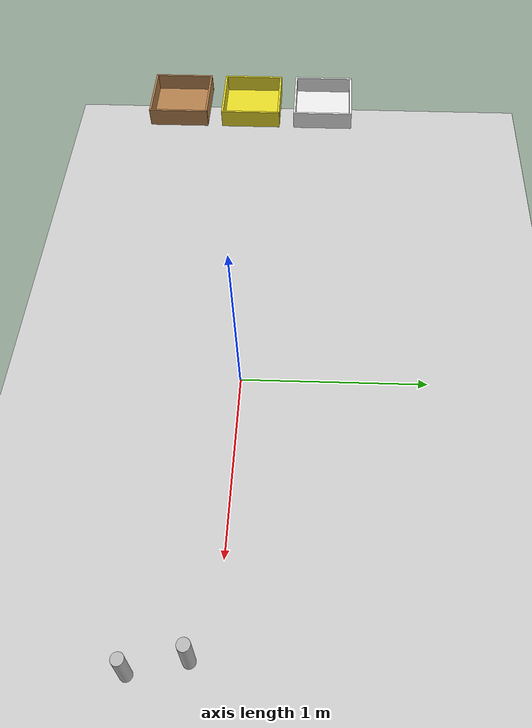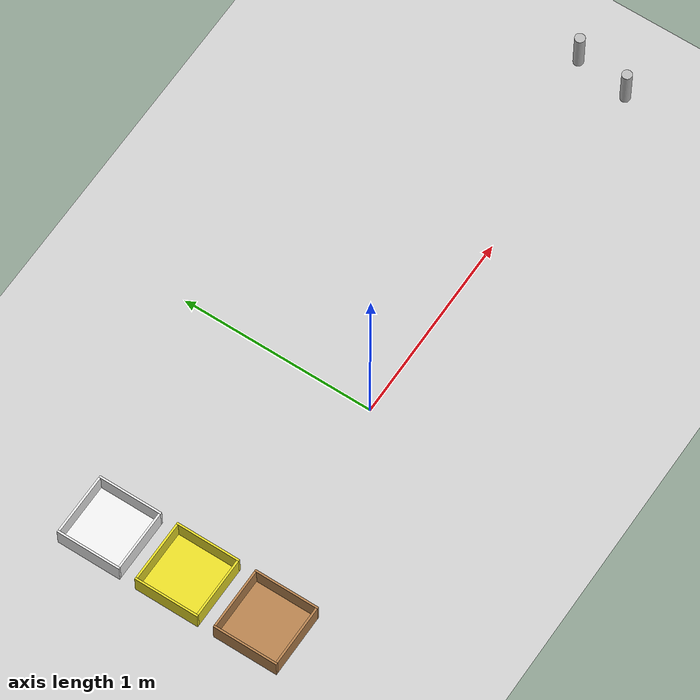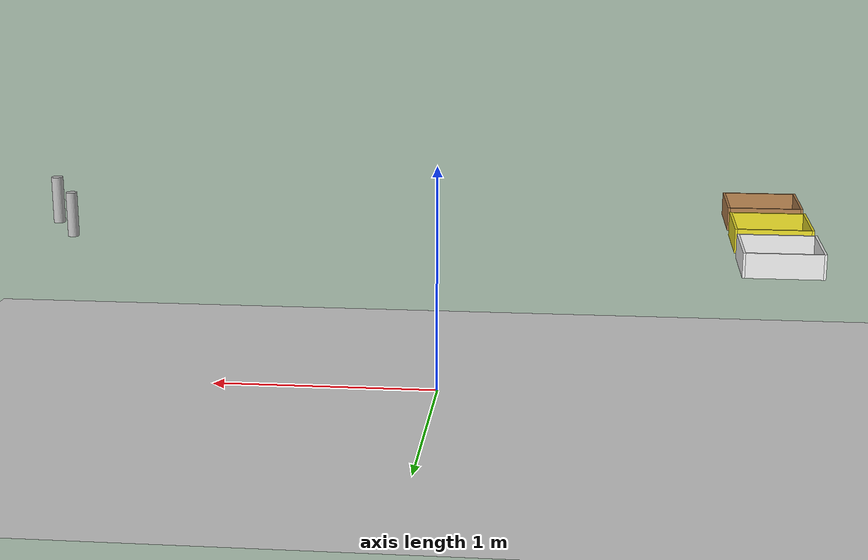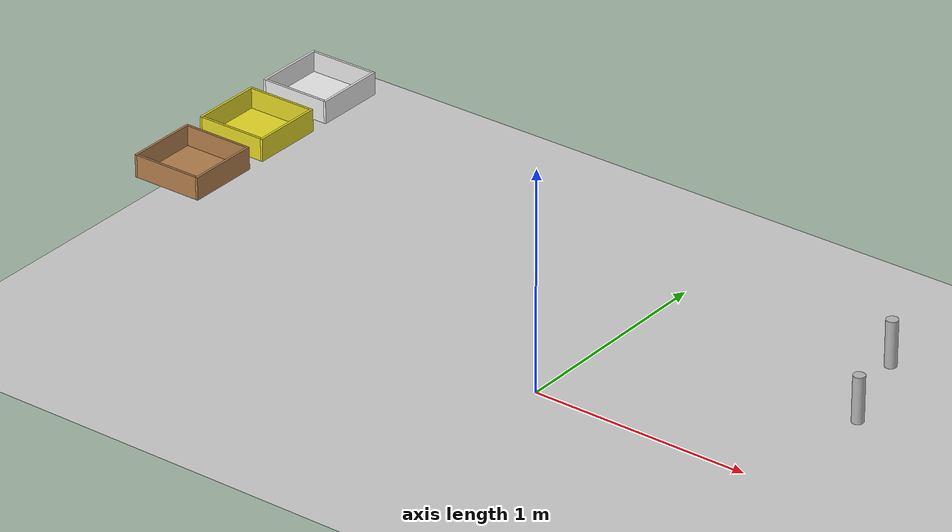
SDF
<sdf version="1.4">
 <world name="default">
  <physics type="ode">
   <gravity>0 0 -9.81</gravity>
   <ode>
    <solver><type>quick</type><iters>20</iters><sor>1.0</sor></solver>
    <constraints>
     <cfm>0.0</cfm>
     <erp>0.2</erp>
     <contact_max_correcting_vel>100.0</contact_max_correcting_vel>
     <contact_surface_layer>0.0</contact_surface_layer>
    </constraints>
   </ode>
   <real_time_update_rate>1000</real_time_update_rate>
   <max_step_size>0.001</max_step_size>
  </physics>
  <include><uri>model://sun</uri></include>
  <include><uri>model://ground_plane</uri></include>
  <include>
   <uri>model://wooden_container</uri>
   <name>wooden_container</name>
   <pose>-1.4 -0.4 0.7 0 0 0</pose>
  </include>
  <include>
   <uri>model://yellow_container</uri>
   <name>yellow_container</name>
   <pose>-1.4 0 0.7 0 0 0</pose>
  </include>
  <include>
   <uri>model://white_container</uri>
   <name>white_container</name>
   <pose>-1.4 0.4 0.7 0 0 0</pose>
  </include>
  <include><uri>model://pringles</uri><name>3</name><pose>1.68 -0.25 0.7 0 0 1.57</pose></include>
  <include><uri>model://pringles2</uri><name>5</name><pose>1.66 -0.01 0.7 0 0 1.57</pose></include>
 </world>
</sdf>

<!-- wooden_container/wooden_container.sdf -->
<sdf version='1.4'>
  <model name='wooden_container'>
      <static>0</static>
      <link name='link'>
        <inertial>
          <mass>10.0</mass>
          <inertia>
            <ixx>0.000000</ixx>
            <ixy>0.000000</ixy>
            <ixz>0.000000</ixz>
            <iyy>0.000000</iyy>
            <iyz>0.000000</iyz>
            <izz>0.000000</izz>
          </inertia>
        </inertial>
        <collision name="bottom">
          <pose>0 0 0 0 0 0</pose>
          <geometry>
            <box>
              <size>0.3 0.3 0.01</size>
            </box>
          </geometry>
          <surface>
            <bounce/>
            <friction>
              <ode/>
            </friction>
            <contact>
              <ode/>
            </contact>
          </surface>
        </collision>
        <visual name="bottom">
          <pose>0 0 0 0 0 0</pose>
          <geometry>
            <box>
              <size>0.3 0.3 0.01</size>
            </box>
          </geometry>
          <material>
            <script>
              <uri>file://media/materials/scripts/gazebo.material</uri>
              <name>Gazebo/Wood</name>
            </script>
          </material>
        </visual>

        <collision name="x">
          <pose>0.155 0 0.045 0 0 0</pose>
          <geometry>
            <box>
              <size>0.01 0.32 0.1</size>
            </box>
          </geometry>
          <surface>
            <bounce/>
            <friction>
              <ode/>
            </friction>
            <contact>
              <ode/>
            </contact>
          </surface>
        </collision>
        <visual name="x">
          <pose>0.155 0 0.045 0 0 0</pose>
          <geometry>
            <box>
              <size>0.01 0.32 0.1</size>
            </box>
          </geometry>
          <material>
            <script>
              <uri>file://media/materials/scripts/gazebo.material</uri>
              <name>Gazebo/Wood</name>
            </script>
          </material>
        </visual>

        <collision name="-x">
          <pose>-0.155 0 0.045 0 0 0</pose>
          <geometry>
            <box>
              <size>0.01 0.32 0.1</size>
            </box>
          </geometry>
          <surface>
            <bounce/>
            <friction>
              <ode/>
            </friction>
            <contact>
              <ode/>
            </contact>
          </surface>
        </collision>
        <visual name="-x">
          <pose>-0.155 0 0.045 0 0 0</pose>
          <geometry>
            <box>
              <size>0.01 0.32 0.1</size>
            </box>
          </geometry>
          <material>
            <script>
              <uri>file://media/materials/scripts/gazebo.material</uri>
              <name>Gazebo/Wood</name>
            </script>
          </material>
        </visual>

        <collision name="y">
          <pose>0 0.155 0.045 0 0 0</pose>
          <geometry>
            <box>
              <size>0.3 0.01 0.1</size>
            </box>
          </geometry>
          <surface>
            <bounce/>
            <friction>
              <ode/>
            </friction>
            <contact>
              <ode/>
            </contact>
          </surface>
        </collision>
        <visual name="y">
          <pose>0 0.155 0.045 0 0 0</pose>
          <geometry>
            <box>
              <size>0.3 0.01 0.1</size>
            </box>
          </geometry>
          <material>
            <script>
              <uri>file://media/materials/scripts/gazebo.material</uri>
              <name>Gazebo/Wood</name>
            </script>
          </material>
        </visual>

        <collision name="-y">
          <pose>0 -0.155 0.045 0 0 0</pose>
          <geometry>
            <box>
              <size>0.3 0.01 0.1</size>
            </box>
          </geometry>
          <surface>
            <bounce/>
            <friction>
              <ode/>
            </friction>
            <contact>
              <ode/>
            </contact>
          </surface>
        </collision>
        <visual name="-y">
          <pose>0 -0.155 0.045 0 0 0</pose>
          <geometry>
            <box>
              <size>0.3 0.01 0.1</size>
            </box>
          </geometry>
          <material>
            <script>
              <uri>file://media/materials/scripts/gazebo.material</uri>
              <name>Gazebo/Wood</name>
            </script>
          </material>
        </visual>

        <velocity_decay>
          <linear>0.000000</linear>
          <angular>0.000000</angular>
        </velocity_decay>
        <self_collide>0</self_collide>
        <kinematic>0</kinematic>
        <gravity>1</gravity>
      </link>
  </model>
</sdf>

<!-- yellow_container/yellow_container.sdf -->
<sdf version='1.4'>
  <model name='yellow_container'>
      <static>0</static>
      <link name='link'>
        <inertial>
          <mass>10.0</mass>
          <inertia>
            <ixx>0.000000</ixx>
            <ixy>0.000000</ixy>
            <ixz>0.000000</ixz>
            <iyy>0.000000</iyy>
            <iyz>0.000000</iyz>
            <izz>0.000000</izz>
          </inertia>
        </inertial>
        <collision name="bottom">
          <pose>0 0 0 0 0 0</pose>
          <geometry>
            <box>
              <size>0.3 0.3 0.01</size>
            </box>
          </geometry>
          <surface>
            <bounce/>
            <friction>
              <ode/>
            </friction>
            <contact>
              <ode/>
            </contact>
          </surface>
        </collision>
        <visual name="bottom">
          <pose>0 0 0 0 0 0</pose>
          <geometry>
            <box>
              <size>0.3 0.3 0.01</size>
            </box>
          </geometry>
          <material>
            <script>
              <uri>file://media/materials/scripts/gazebo.material</uri>
              <name>Gazebo/DarkYellow</name>
            </script>
          </material>
        </visual>

        <collision name="x">
          <pose>0.155 0 0.045 0 0 0</pose>
          <geometry>
            <box>
              <size>0.01 0.32 0.1</size>
            </box>
          </geometry>
          <surface>
            <bounce/>
            <friction>
              <ode/>
            </friction>
            <contact>
              <ode/>
            </contact>
          </surface>
        </collision>
        <visual name="x">
          <pose>0.155 0 0.045 0 0 0</pose>
          <geometry>
            <box>
              <size>0.01 0.32 0.1</size>
            </box>
          </geometry>
          <material>
            <script>
              <uri>file://media/materials/scripts/gazebo.material</uri>
              <name>Gazebo/DarkYellow</name>
            </script>
          </material>
        </visual>

        <collision name="-x">
          <pose>-0.155 0 0.045 0 0 0</pose>
          <geometry>
            <box>
              <size>0.01 0.32 0.1</size>
            </box>
          </geometry>
          <surface>
            <bounce/>
            <friction>
              <ode/>
            </friction>
            <contact>
              <ode/>
            </contact>
          </surface>
        </collision>
        <visual name="-x">
          <pose>-0.155 0 0.045 0 0 0</pose>
          <geometry>
            <box>
              <size>0.01 0.32 0.1</size>
            </box>
          </geometry>
          <material>
            <script>
              <uri>file://media/materials/scripts/gazebo.material</uri>
              <name>Gazebo/DarkYellow</name>
            </script>
          </material>
        </visual>

        <collision name="y">
          <pose>0 0.155 0.045 0 0 0</pose>
          <geometry>
            <box>
              <size>0.3 0.01 0.1</size>
            </box>
          </geometry>
          <surface>
            <bounce/>
            <friction>
              <ode/>
            </friction>
            <contact>
              <ode/>
            </contact>
          </surface>
        </collision>
        <visual name="y">
          <pose>0 0.155 0.045 0 0 0</pose>
          <geometry>
            <box>
              <size>0.3 0.01 0.1</size>
            </box>
          </geometry>
          <material>
            <script>
              <uri>file://media/materials/scripts/gazebo.material</uri>
              <name>Gazebo/DarkYellow</name>
            </script>
          </material>
        </visual>

        <collision name="-y">
          <pose>0 -0.155 0.045 0 0 0</pose>
          <geometry>
            <box>
              <size>0.3 0.01 0.1</size>
            </box>
          </geometry>
          <surface>
            <bounce/>
            <friction>
              <ode/>
            </friction>
            <contact>
              <ode/>
            </contact>
          </surface>
        </collision>
        <visual name="-y">
          <pose>0 -0.155 0.045 0 0 0</pose>
          <geometry>
            <box>
              <size>0.3 0.01 0.1</size>
            </box>
          </geometry>
          <material>
            <script>
              <uri>file://media/materials/scripts/gazebo.material</uri>
              <name>Gazebo/DarkYellow</name>
            </script>
          </material>
        </visual>

        <velocity_decay>
          <linear>0.000000</linear>
          <angular>0.000000</angular>
        </velocity_decay>
        <self_collide>0</self_collide>
        <kinematic>0</kinematic>
        <gravity>1</gravity>
      </link>
  </model>
</sdf>

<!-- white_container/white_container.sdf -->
<sdf version='1.4'>
  <model name='white_container'>
      <static>0</static>
      <link name='link'>
        <inertial>
          <mass>10.0</mass>
          <inertia>
            <ixx>0.000000</ixx>
            <ixy>0.000000</ixy>
            <ixz>0.000000</ixz>
            <iyy>0.000000</iyy>
            <iyz>0.000000</iyz>
            <izz>0.000000</izz>
          </inertia>
        </inertial>
        <collision name="bottom">
          <pose>0 0 0 0 0 0</pose>
          <geometry>
            <box>
              <size>0.3 0.3 0.01</size>
            </box>
          </geometry>
          <surface>
            <bounce/>
            <friction>
              <ode/>
            </friction>
            <contact>
              <ode/>
            </contact>
          </surface>
        </collision>
        <visual name="bottom">
          <pose>0 0 0 0 0 0</pose>
          <geometry>
            <box>
              <size>0.3 0.3 0.01</size>
            </box>
          </geometry>
          <material>
            <script>
              <uri>file://media/materials/scripts/gazebo.material</uri>
              <name>Gazebo/White</name>
            </script>
          </material>
        </visual>

        <collision name="x">
          <pose>0.155 0 0.045 0 0 0</pose>
          <geometry>
            <box>
              <size>0.01 0.32 0.1</size>
            </box>
          </geometry>
          <surface>
            <bounce/>
            <friction>
              <ode/>
            </friction>
            <contact>
              <ode/>
            </contact>
          </surface>
        </collision>
        <visual name="x">
          <pose>0.155 0 0.045 0 0 0</pose>
          <geometry>
            <box>
              <size>0.01 0.32 0.1</size>
            </box>
          </geometry>
          <material>
            <script>
              <uri>file://media/materials/scripts/gazebo.material</uri>
              <name>Gazebo/White</name>
            </script>
          </material>
        </visual>

        <collision name="-x">
          <pose>-0.155 0 0.045 0 0 0</pose>
          <geometry>
            <box>
              <size>0.01 0.32 0.1</size>
            </box>
          </geometry>
          <surface>
            <bounce/>
            <friction>
              <ode/>
            </friction>
            <contact>
              <ode/>
            </contact>
          </surface>
        </collision>
        <visual name="-x">
          <pose>-0.155 0 0.045 0 0 0</pose>
          <geometry>
            <box>
              <size>0.01 0.32 0.1</size>
            </box>
          </geometry>
          <material>
            <script>
              <uri>file://media/materials/scripts/gazebo.material</uri>
              <name>Gazebo/White</name>
            </script>
          </material>
        </visual>

        <collision name="y">
          <pose>0 0.155 0.045 0 0 0</pose>
          <geometry>
            <box>
              <size>0.3 0.01 0.1</size>
            </box>
          </geometry>
          <surface>
            <bounce/>
            <friction>
              <ode/>
            </friction>
            <contact>
              <ode/>
            </contact>
          </surface>
        </collision>
        <visual name="y">
          <pose>0 0.155 0.045 0 0 0</pose>
          <geometry>
            <box>
              <size>0.3 0.01 0.1</size>
            </box>
          </geometry>
          <material>
            <script>
              <uri>file://media/materials/scripts/gazebo.material</uri>
              <name>Gazebo/White</name>
            </script>
          </material>
        </visual>

        <collision name="-y">
          <pose>0 -0.155 0.045 0 0 0</pose>
          <geometry>
            <box>
              <size>0.3 0.01 0.1</size>
            </box>
          </geometry>
          <surface>
            <bounce/>
            <friction>
              <ode/>
            </friction>
            <contact>
              <ode/>
            </contact>
          </surface>
        </collision>
        <visual name="-y">
          <pose>0 -0.155 0.045 0 0 0</pose>
          <geometry>
            <box>
              <size>0.3 0.01 0.1</size>
            </box>
          </geometry>
          <material>
            <script>
              <uri>file://media/materials/scripts/gazebo.material</uri>
              <name>Gazebo/White</name>
            </script>
          </material>
        </visual>

        <velocity_decay>
          <linear>0.000000</linear>
          <angular>0.000000</angular>
        </velocity_decay>
        <self_collide>0</self_collide>
        <kinematic>0</kinematic>
        <gravity>1</gravity>
      </link>
  </model>
</sdf>

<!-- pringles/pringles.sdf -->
<sdf version='1.4'>
  <model name="pringles">
      <static>0</static>
      <link name='link'>
        <inertial>
          <mass>0.01</mass>
          <inertia>
            <ixx>0.000000</ixx>
            <ixy>0.000000</ixy>
            <ixz>0.000000</ixz>
            <iyy>0.000000</iyy>
            <iyz>0.000000</iyz>
            <izz>0.000000</izz>
          </inertia>
        </inertial>
        <collision name='collision'>
          <geometry>
            <cylinder>
              <radius>0.025</radius>
              <length>0.2</length>
            </cylinder>
          </geometry>
          <surface>
            <bounce/>
            <friction>
              <ode>
                <mu>1000.0</mu>
                <mu2>1000.0</mu2>
              </ode>
            </friction>
            <contact>
              <ode/>
            </contact>
          </surface>
        </collision>
        <visual name='visual'>
          <geometry>
            <cylinder>
              <radius>0.025</radius>
              <length>0.2</length>
            </cylinder>
          </geometry>
          <material>
            <script>
	      <uri>model://pringles/material/scripts</uri>
	      <uri>model://pringles/material/textures</uri>
              <name>Custom/pringles</name>
            </script>
          </material>
        </visual>
        <velocity_decay>
          <linear>0.000000</linear>
          <angular>0.000000</angular>
        </velocity_decay>
        <self_collide>0</self_collide>
        <kinematic>0</kinematic>
        <gravity>1</gravity>
      </link>
  </model>
</sdf>

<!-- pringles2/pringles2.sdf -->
<sdf version="1.4">
  <model name="pringles2">
    <static>0</static>
    <link name="link">
      <inertial>
        <mass>0.01</mass>
        <inertia>
          <ixx>0.000000</ixx>
          <ixy>0.000000</ixy>
          <ixz>0.000000</ixz>
          <iyy>0.000000</iyy>
          <iyz>0.000000</iyz>
          <izz>0.000000</izz>
        </inertia>
      </inertial>
      <collision name="collision">
        <pose>0 0 0.12 3.1416 0 0</pose>
        <geometry>
          <cylinder>
            <radius>0.025</radius>
            <length>0.2</length>
          </cylinder>
        </geometry>
        <surface>
          <bounce />
          <friction>
            <ode>
              <mu>1000.0</mu>
              <mu2>1000.0</mu2>
            </ode>
          </friction>
          <contact>
            <ode />
          </contact>
        </surface>
      </collision>
      <visual name="visual">
        <pose>0 0 0.12 3.1416 0 0</pose>
        <geometry>
          <cylinder>
            <radius>0.025</radius>
            <length>0.2</length>
          </cylinder>
        </geometry>
        <material>
          <script>
	      <uri>model://pringles2/material/scripts</uri>
	      <uri>model://pringles2/material/textures</uri>
              <name>Custom/pringles2</name>
          </script>
        </material>
      </visual>
      <velocity_decay>
        <linear>0.000000</linear>
        <angular>0.000000</angular>
      </velocity_decay>
      <self_collide>0</self_collide>
      <kinematic>0</kinematic>
      <gravity>1</gravity>
    </link>
  </model>
</sdf>
